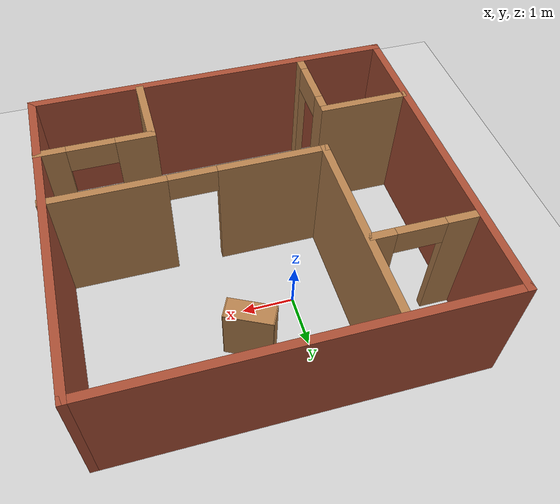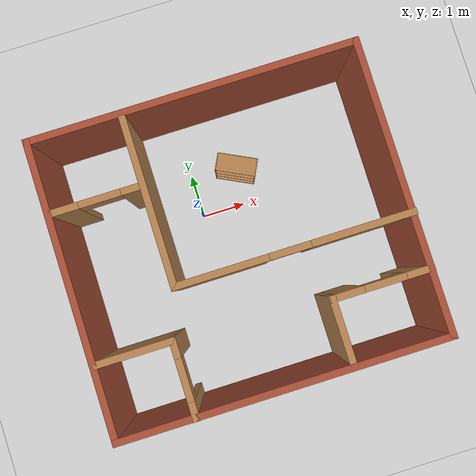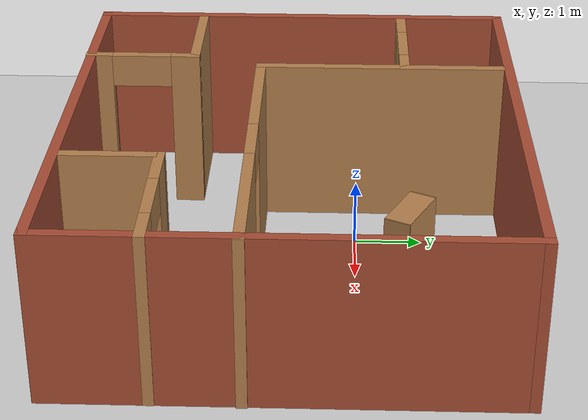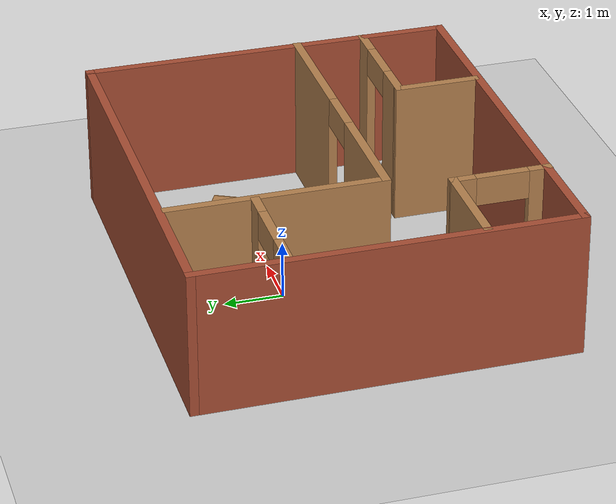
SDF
<sdf version="1.7">
 <world name="default">
  <light name="sun" type="directional">
   <pose>0 0 10 0 -0 0</pose>
   <diffuse>0.8 0.8 0.8 1</diffuse>
   <specular>0.2 0.2 0.2 1</specular>
   <attenuation>
    <range>1000</range>
    <constant>0.9</constant>
    <linear>0.01</linear>
    <quadratic>0.001</quadratic>
   </attenuation>
   <direction>-0.5 0.1 -0.9</direction>
   <spot><inner_angle>0</inner_angle><outer_angle>0</outer_angle><falloff>0</falloff></spot>
  </light>
  <model name="ground_plane">
   <static>1</static>
   <link name="link">
    <collision name="collision">
     <geometry><plane><normal>0 0 1</normal><size>100 100</size></plane></geometry>
     <surface><friction><ode><mu>100</mu><mu2>50</mu2></ode></friction></surface>
    </collision>
    <visual name="visual">
     <cast_shadows>0</cast_shadows>
     <geometry><plane><normal>0 0 1</normal><size>100 100</size></plane></geometry>
     <material>
      <script><uri>file://media/materials/scripts/gazebo.material</uri><name>Gazebo/Grey</name></script>
     </material>
    </visual>
   </link>
  </model>
  <gravity>0 0 -9.8</gravity>
  <magnetic_field>6e-06 2.3e-05 -4.2e-05</magnetic_field>
  <atmosphere type="adiabatic"/>
  <physics type="ode">
   <max_step_size>0.001</max_step_size>
   <real_time_factor>1</real_time_factor>
   <real_time_update_rate>1000</real_time_update_rate>
  </physics>
  <scene><ambient>0.4 0.4 0.4 1</ambient><background>0.7 0.7 0.7 1</background><shadows>1</shadows></scene>
  <audio><device>default</device></audio>
  <spherical_coordinates>
   <surface_model>EARTH_WGS84</surface_model>
   <latitude_deg>0</latitude_deg>
   <longitude_deg>0</longitude_deg>
   <elevation>0</elevation>
   <heading_deg>0</heading_deg>
  </spherical_coordinates>
  <model name="ego_test_world">
   <pose>0.581384 -0.907917 0 0 -0 0</pose>
   <link name="Wall_11">
    <collision name="Wall_11_Collision">
     <geometry><box><size>3.75 0.15 2.5</size></box></geometry>
     <pose>0 0 1.25 0 -0 0</pose>
    </collision>
    <visual name="Wall_11_Visual">
     <pose>0 0 1.25 0 -0 0</pose>
     <geometry><box><size>3.75 0.15 2.5</size></box></geometry>
     <material>
      <script><uri>file://media/materials/scripts/gazebo.material</uri><name>Gazebo/Wood</name></script>
      <ambient>1 1 1 1</ambient>
     </material>
     <meta><layer>0</layer></meta>
    </visual>
    <pose>-1.53981 1.25092 0 0 -0 -1.5708</pose>
   </link>
   <link name="Wall_12">
    <pose>1.01019 -0.549082 0 0 -0 0</pose>
    <visual name="Wall_12_Visual_0">
     <pose>-1.57765 0 1.25 0 -0 0</pose>
     <geometry><box><size>2.0947 0.15 2.5</size></box></geometry>
     <material>
      <script><uri>file://media/materials/scripts/gazebo.material</uri><name>Gazebo/Wood</name></script>
      <ambient>1 1 1 1</ambient>
     </material>
     <meta><layer>0</layer></meta>
    </visual>
    <collision name="Wall_12_Collision_0">
     <geometry><box><size>2.0947 0.15 2.5</size></box></geometry>
     <pose>-1.57765 0 1.25 0 -0 0</pose>
    </collision>
    <visual name="Wall_12_Visual_1">
     <pose>1.49735 0 1.25 0 -0 0</pose>
     <geometry><box><size>2.2553 0.15 2.5</size></box></geometry>
     <material>
      <script><uri>file://media/materials/scripts/gazebo.material</uri><name>Gazebo/Wood</name></script>
      <ambient>1 1 1 1</ambient>
     </material>
     <meta><layer>0</layer></meta>
    </visual>
    <collision name="Wall_12_Collision_1">
     <geometry><box><size>2.2553 0.15 2.5</size></box></geometry>
     <pose>1.49735 0 1.25 0 -0 0</pose>
    </collision>
    <visual name="Wall_12_Visual_2">
     <pose>-0.080302 0 2.25 0 -0 0</pose>
     <geometry><box><size>0.9 0.15 0.5</size></box></geometry>
     <material>
      <script><uri>file://media/materials/scripts/gazebo.material</uri><name>Gazebo/Wood</name></script>
      <ambient>1 1 1 1</ambient>
     </material>
     <meta><layer>0</layer></meta>
    </visual>
    <collision name="Wall_12_Collision_2">
     <geometry><box><size>0.9 0.15 0.5</size></box></geometry>
     <pose>-0.080302 0 2.25 0 -0 0</pose>
    </collision>
   </link>
   <link name="Wall_14">
    <pose>-2.52996 1.6194 0 0 -0 0</pose>
    <visual name="Wall_14_Visual_0">
     <pose>-0.690981 0 1.25 0 -0 0</pose>
     <geometry><box><size>0.618038 0.15 2.5</size></box></geometry>
     <material>
      <script><uri>file://media/materials/scripts/gazebo.material</uri><name>Gazebo/Wood</name></script>
      <ambient>1 1 1 1</ambient>
     </material>
     <meta><layer>0</layer></meta>
    </visual>
    <collision name="Wall_14_Collision_0">
     <geometry><box><size>0.618038 0.15 2.5</size></box></geometry>
     <pose>-0.690981 0 1.25 0 -0 0</pose>
    </collision>
    <visual name="Wall_14_Visual_1">
     <pose>0.759019 0 1.25 0 -0 0</pose>
     <geometry><box><size>0.481962 0.15 2.5</size></box></geometry>
     <material>
      <script><uri>file://media/materials/scripts/gazebo.material</uri><name>Gazebo/Wood</name></script>
      <ambient>1 1 1 1</ambient>
     </material>
     <meta><layer>0</layer></meta>
    </visual>
    <collision name="Wall_14_Collision_1">
     <geometry><box><size>0.481962 0.15 2.5</size></box></geometry>
     <pose>0.759019 0 1.25 0 -0 0</pose>
    </collision>
    <visual name="Wall_14_Visual_2">
     <pose>0.068038 0 2.25 0 -0 0</pose>
     <geometry><box><size>0.9 0.15 0.5</size></box></geometry>
     <material>
      <script><uri>file://media/materials/scripts/gazebo.material</uri><name>Gazebo/Wood</name></script>
      <ambient>1 1 1 1</ambient>
     </material>
     <meta><layer>0</layer></meta>
    </visual>
    <collision name="Wall_14_Collision_2">
     <geometry><box><size>0.9 0.15 0.5</size></box></geometry>
     <pose>0.068038 0 2.25 0 -0 0</pose>
    </collision>
   </link>
   <link name="Wall_16">
    <collision name="Wall_16_Collision">
     <geometry><box><size>1.5 0.15 2.5</size></box></geometry>
     <pose>0 0 1.25 0 -0 0</pose>
    </collision>
    <visual name="Wall_16_Visual">
     <pose>0 0 1.25 0 -0 0</pose>
     <geometry><box><size>1.5 0.15 2.5</size></box></geometry>
     <material>
      <script><uri>file://media/materials/scripts/gazebo.material</uri><name>Gazebo/Wood</name></script>
      <ambient>1 1 1 1</ambient>
     </material>
     <meta><layer>0</layer></meta>
    </visual>
    <pose>1.44575 -2.41931 0 0 -0 1.5708</pose>
   </link>
   <link name="Wall_17">
    <pose>2.49575 -1.74431 0 0 -0 0</pose>
    <visual name="Wall_17_Visual_0">
     <pose>-0.748274 0 1.25 0 -0 0</pose>
     <geometry><box><size>0.753452 0.15 2.5</size></box></geometry>
     <material>
      <script><uri>file://media/materials/scripts/gazebo.material</uri><name>Gazebo/Wood</name></script>
      <ambient>1 1 1 1</ambient>
     </material>
     <meta><layer>0</layer></meta>
    </visual>
    <collision name="Wall_17_Collision_0">
     <geometry><box><size>0.753452 0.15 2.5</size></box></geometry>
     <pose>-0.748274 0 1.25 0 -0 0</pose>
    </collision>
    <visual name="Wall_17_Visual_1">
     <pose>0.826726 0 1.25 0 -0 0</pose>
     <geometry><box><size>0.596548 0.15 2.5</size></box></geometry>
     <material>
      <script><uri>file://media/materials/scripts/gazebo.material</uri><name>Gazebo/Wood</name></script>
      <ambient>1 1 1 1</ambient>
     </material>
     <meta><layer>0</layer></meta>
    </visual>
    <collision name="Wall_17_Collision_1">
     <geometry><box><size>0.596548 0.15 2.5</size></box></geometry>
     <pose>0.826726 0 1.25 0 -0 0</pose>
    </collision>
    <visual name="Wall_17_Visual_2">
     <pose>0.078452 0 2.25 0 -0 0</pose>
     <geometry><box><size>0.9 0.15 0.5</size></box></geometry>
     <material>
      <script><uri>file://media/materials/scripts/gazebo.material</uri><name>Gazebo/Wood</name></script>
      <ambient>1 1 1 1</ambient>
     </material>
     <meta><layer>0</layer></meta>
    </visual>
    <collision name="Wall_17_Collision_2">
     <geometry><box><size>0.9 0.15 0.5</size></box></geometry>
     <pose>0.078452 0 2.25 0 -0 0</pose>
    </collision>
   </link>
   <link name="Wall_19">
    <collision name="Wall_19_Collision">
     <geometry><box><size>1.75 0.15 2.5</size></box></geometry>
     <pose>0 0 1.25 0 -0 0</pose>
    </collision>
    <visual name="Wall_19_Visual">
     <pose>0 0 1.25 0 -0 0</pose>
     <geometry><box><size>1.75 0.15 2.5</size></box></geometry>
     <material>
      <script><uri>file://media/materials/scripts/gazebo.material</uri><name>Gazebo/Wood</name></script>
      <ambient>1 1 1 1</ambient>
     </material>
     <meta><layer>0</layer></meta>
    </visual>
    <pose>-2.6872 -1.57896 0 0 -0 0</pose>
   </link>
   <link name="Wall_20">
    <pose>-1.8872 -2.37896 0 0 -0 -1.5708</pose>
    <visual name="Wall_20_Visual_0">
     <pose>-0.653033 0 1.25 0 -0 0</pose>
     <geometry><box><size>0.443934 0.15 2.5</size></box></geometry>
     <material>
      <script><uri>file://media/materials/scripts/gazebo.material</uri><name>Gazebo/Wood</name></script>
      <ambient>1 1 1 1</ambient>
     </material>
     <meta><layer>0</layer></meta>
    </visual>
    <collision name="Wall_20_Collision_0">
     <geometry><box><size>0.443934 0.15 2.5</size></box></geometry>
     <pose>-0.653033 0 1.25 0 -0 0</pose>
    </collision>
    <visual name="Wall_20_Visual_1">
     <pose>0.671967 0 1.25 0 -0 0</pose>
     <geometry><box><size>0.406066 0.15 2.5</size></box></geometry>
     <material>
      <script><uri>file://media/materials/scripts/gazebo.material</uri><name>Gazebo/Wood</name></script>
      <ambient>1 1 1 1</ambient>
     </material>
     <meta><layer>0</layer></meta>
    </visual>
    <collision name="Wall_20_Collision_1">
     <geometry><box><size>0.406066 0.15 2.5</size></box></geometry>
     <pose>0.671967 0 1.25 0 -0 0</pose>
    </collision>
    <visual name="Wall_20_Visual_2">
     <pose>0.018934 0 2.25 0 -0 0</pose>
     <geometry><box><size>0.9 0.15 0.5</size></box></geometry>
     <material>
      <script><uri>file://media/materials/scripts/gazebo.material</uri><name>Gazebo/Wood</name></script>
      <ambient>1 1 1 1</ambient>
     </material>
     <meta><layer>0</layer></meta>
    </visual>
    <collision name="Wall_20_Collision_2">
     <geometry><box><size>0.9 0.15 0.5</size></box></geometry>
     <pose>0.018934 0 2.25 0 -0 0</pose>
    </collision>
   </link>
   <link name="Wall_6">
    <collision name="Wall_6_Collision">
     <geometry><box><size>6.5 0.15 2.5</size></box></geometry>
     <pose>0 0 1.25 0 -0 0</pose>
    </collision>
    <visual name="Wall_6_Visual">
     <pose>0 0 1.25 0 -0 0</pose>
     <geometry><box><size>6.5 0.15 2.5</size></box></geometry>
     <material>
      <script><uri>file://media/materials/scripts/gazebo.material</uri><name>Gazebo/Bricks</name></script>
      <ambient>1 1 1 1</ambient>
     </material>
     <meta><layer>0</layer></meta>
    </visual>
    <pose>-3.56019 0.003958 0 0 -0 -1.5708</pose>
   </link>
   <link name="Wall_7">
    <collision name="Wall_7_Collision">
     <geometry><box><size>7.25 0.15 2.5</size></box></geometry>
     <pose>0 0 1.25 0 -0 0</pose>
    </collision>
    <visual name="Wall_7_Visual">
     <pose>0 0 1.25 0 -0 0</pose>
     <geometry><box><size>7.25 0.15 2.5</size></box></geometry>
     <material>
      <script><uri>file://media/materials/scripts/gazebo.material</uri><name>Gazebo/Bricks</name></script>
      <ambient>1 1 1 1</ambient>
     </material>
     <meta><layer>0</layer></meta>
    </visual>
    <pose>-0.010185 -3.17104 0 0 -0 0</pose>
   </link>
   <link name="Wall_8">
    <collision name="Wall_8_Collision">
     <geometry><box><size>6.5 0.15 2.5</size></box></geometry>
     <pose>0 0 1.25 0 -0 0</pose>
    </collision>
    <visual name="Wall_8_Visual">
     <pose>0 0 1.25 0 -0 0</pose>
     <geometry><box><size>6.5 0.15 2.5</size></box></geometry>
     <material>
      <script><uri>file://media/materials/scripts/gazebo.material</uri><name>Gazebo/Bricks</name></script>
      <ambient>1 1 1 1</ambient>
     </material>
     <meta><layer>0</layer></meta>
    </visual>
    <pose>3.53981 0.003958 0 0 -0 1.5708</pose>
   </link>
   <link name="Wall_9">
    <collision name="Wall_9_Collision">
     <geometry><box><size>7.25 0.15 2.5</size></box></geometry>
     <pose>0 0 1.25 0 -0 0</pose>
    </collision>
    <visual name="Wall_9_Visual">
     <pose>0 0 1.25 0 -0 0</pose>
     <geometry><box><size>7.25 0.15 2.5</size></box></geometry>
     <material>
      <script><uri>file://media/materials/scripts/gazebo.material</uri><name>Gazebo/Bricks</name></script>
      <ambient>1 1 1 1</ambient>
     </material>
     <meta><layer>0</layer></meta>
    </visual>
    <pose>-0.010185 3.17896 0 0 -0 3.14159</pose>
   </link>
   <static>1</static>
  </model>
  <model name="bookshelf">
   <static>1</static>
   <link name="link">
    <inertial><mass>1</mass></inertial>
    <collision name="back">
     <pose>0 0.005 0.6 0 -0 0</pose>
     <geometry><box><size>0.9 0.01 1.2</size></box></geometry>
    </collision>
    <visual name="visual1">
     <pose>0 0.005 0.6 0 -0 0</pose>
     <geometry><box><size>0.9 0.01 1.2</size></box></geometry>
     <material>
      <script><uri>file://media/materials/scripts/gazebo.material</uri><name>Gazebo/Wood</name></script>
     </material>
    </visual>
    <collision name="left_side">
     <pose>0.45 -0.195 0.6 0 -0 0</pose>
     <geometry><box><size>0.02 0.4 1.2</size></box></geometry>
    </collision>
    <visual name="visual2">
     <pose>0.45 -0.195 0.6 0 -0 0</pose>
     <geometry><box><size>0.02 0.4 1.2</size></box></geometry>
     <material>
      <script><uri>file://media/materials/scripts/gazebo.material</uri><name>Gazebo/Wood</name></script>
     </material>
    </visual>
    <collision name="right_side">
     <pose>-0.45 -0.195 0.6 0 -0 0</pose>
     <geometry><box><size>0.02 0.4 1.2</size></box></geometry>
    </collision>
    <visual name="visual3">
     <pose>-0.45 -0.195 0.6 0 -0 0</pose>
     <geometry><box><size>0.02 0.4 1.2</size></box></geometry>
     <material>
      <script><uri>file://media/materials/scripts/gazebo.material</uri><name>Gazebo/Wood</name></script>
     </material>
    </visual>
    <collision name="bottom">
     <pose>0 -0.195 0.03 0 -0 0</pose>
     <geometry><box><size>0.88 0.4 0.06</size></box></geometry>
    </collision>
    <visual name="visual4">
     <pose>0 -0.195 0.03 0 -0 0</pose>
     <geometry><box><size>0.88 0.4 0.06</size></box></geometry>
     <material>
      <script><uri>file://media/materials/scripts/gazebo.material</uri><name>Gazebo/Wood</name></script>
     </material>
    </visual>
    <collision name="top">
     <pose>0 -0.195 1.19 0 -0 0</pose>
     <geometry><box><size>0.88 0.4 0.02</size></box></geometry>
    </collision>
    <visual name="visual5">
     <pose>0 -0.195 1.19 0 -0 0</pose>
     <geometry><box><size>0.88 0.4 0.02</size></box></geometry>
     <material>
      <script><uri>file://media/materials/scripts/gazebo.material</uri><name>Gazebo/Wood</name></script>
     </material>
    </visual>
    <collision name="low_shelf">
     <pose>0 -0.195 0.43 0 -0 0</pose>
     <geometry><box><size>0.88 0.4 0.02</size></box></geometry>
    </collision>
    <visual name="visual6">
     <pose>0 -0.195 0.43 0 -0 0</pose>
     <geometry><box><size>0.88 0.4 0.02</size></box></geometry>
     <material>
      <script><uri>file://media/materials/scripts/gazebo.material</uri><name>Gazebo/Wood</name></script>
     </material>
    </visual>
    <collision name="high_shelf">
     <pose>0 -0.195 0.8 0 -0 0</pose>
     <geometry><box><size>0.88 0.4 0.02</size></box></geometry>
    </collision>
    <visual name="visual7">
     <pose>0 -0.195 0.8 0 -0 0</pose>
     <geometry><box><size>0.88 0.4 0.02</size></box></geometry>
     <material>
      <script><uri>file://media/materials/scripts/gazebo.material</uri><name>Gazebo/Wood</name></script>
     </material>
    </visual>
   </link>
   <pose>1.14383 0.943643 0 0 0 -0.460775</pose>
  </model>
 </world>
</sdf>
